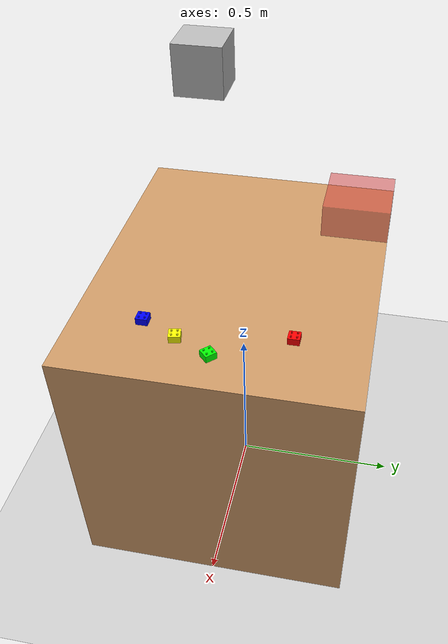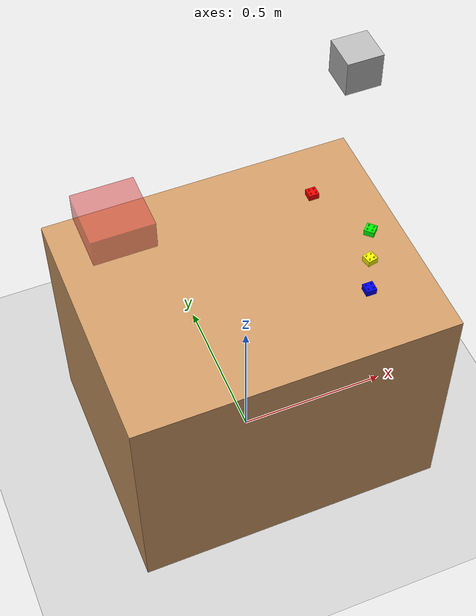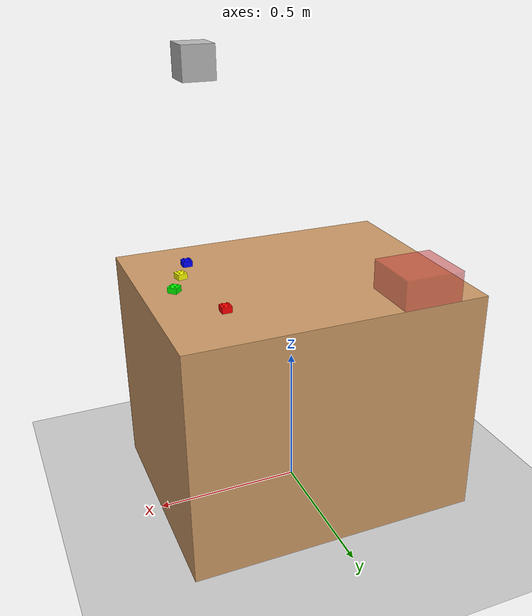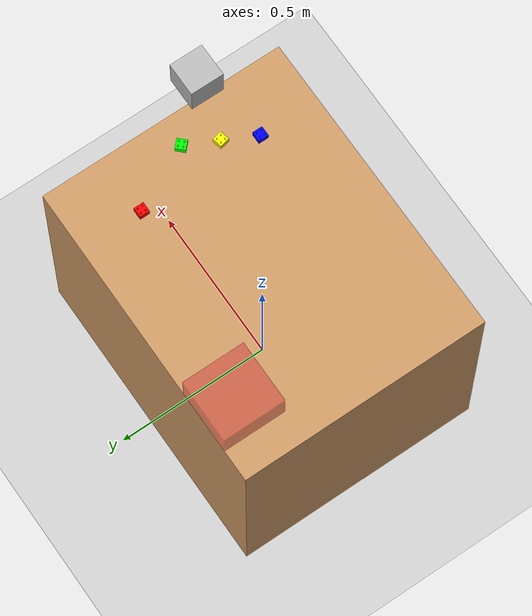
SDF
<?xml version="1.0" ?>
<sdf version="1.7">
  <world name="lego_sorting">
    <physics name="bullet_featherstone_physics" type="bullet_featherstone">
      <bullet>
        <solver>
          <type>btSequentialImpulseConstraintSolver</type>
        </solver>
        <featherstone>true</featherstone>
      </bullet>
      <max_step_size>0.001</max_step_size>
      <real_time_factor>1</real_time_factor>
      <damping>0.1</damping>
      <gravity>0.0 0.0 -9.8</gravity>
    </physics>

    <plugin filename="gz-sim-sensors-system" name="gz::sim::systems::Sensors">
      <render_engine>ogre</render_engine>
    </plugin>
    <plugin filename="gz-sim-pose-publisher-system" name="gz::sim::systems::PosePublisher">
      <publish_link_pose>true</publish_link_pose>
      <publish_nested_model_pose>true</publish_nested_model_pose>
      <use_pose_vector_msg>true</use_pose_vector_msg>
      <static_publisher>true</static_publisher>
      <static_update_frequency>1</static_update_frequency>
    </plugin>

    <!-- Lighting -->
    <light type="directional" name="sun_dir">
      <cast_shadows>true</cast_shadows>
      <pose>0 0 10 0 0 0</pose>
      <diffuse>0.8 0.8 0.8 1</diffuse>
      <specular>0.2 0.2 0.2 1</specular>
      <direction>-0.5 0.1 -0.9</direction>
    </light>

    <include>
      <uri>https://fuel.gazebosim.org/1.0/OpenRobotics/models/Ground Plane</uri>
    </include>

    <scene>
      <ambient>0.8 0.8 0.8 1.0</ambient>
      <background>0.5 0.5 0.5 1.0</background>
      <shadows>true</shadows>
    </scene>

    <!-- Main Table (Height 0.8m) -->
    <model name="table">
      <static>true</static>
      <pose>0 0 0.4 0 0 0</pose>
      <link name="link">
        <collision name="collision">
          <geometry>
            <box>
              <size>1.0 0.8 0.8</size>
            </box>
          </geometry>
        </collision>
        <visual name="visual">
          <geometry>
            <box>
              <size>1.0 0.8 0.8</size>
            </box>
          </geometry>
          <material>
            <ambient>0.8 0.6 0.4 1</ambient>
            <diffuse>0.8 0.6 0.4 1</diffuse>
            <specular>0.1 0.1 0.1 1</specular>
          </material>
        </visual>
      </link>
    </model>

    <!-- Sorting Bin (Red/translucent) -->
    <model name="bin">
        <pose>-0.3 0.3 0.85 0 0 0</pose>
        <static>true</static>
        <link name="link">
            <visual name="visual">
                <geometry><box><size>0.2 0.2 0.1</size></box></geometry>
                <material>
                    <ambient>0.3 0.3 0.3 1</ambient>
                    <diffuse>0.8 0.2 0.2 0.5</diffuse> <!-- Semi-transparent red -->
                </material>
            </visual>
            <!-- Base -->
            <collision name="base">
                <pose>0 0 -0.045 0 0 0</pose>
                <geometry><box><size>0.2 0.2 0.01</size></box></geometry>
            </collision>
            <!-- Walls -->
            <collision name="wall1">
                <pose>0.095 0 0 0 0 0</pose>
                <geometry><box><size>0.01 0.2 0.1</size></box></geometry>
            </collision>
            <collision name="wall2">
                <pose>-0.095 0 0 0 0 0</pose>
                <geometry><box><size>0.01 0.2 0.1</size></box></geometry>
            </collision>
            <collision name="wall3">
                <pose>0 0.095 0 0 0 0</pose>
                <geometry><box><size>0.2 0.01 0.1</size></box></geometry>
            </collision>
            <collision name="wall4">
                <pose>0 -0.095 0 0 0 0</pose>
                <geometry><box><size>0.2 0.01 0.1</size></box></geometry>
            </collision>
        </link>
    </model>

    <!-- Lego Bricks with Studs -->
    <model name="lego_red">
      <pose>0.3 0.2 0.82 0 0 0</pose>
      <link name="link">
        <inertial>
            <mass>0.01</mass>
            <inertia><ixx>0.00001</ixx><iyy>0.00001</iyy><izz>0.00001</izz></inertia>
        </inertial>
        <collision name="collision">
          <geometry>
            <box><size>0.032 0.032 0.02</size></box> <!-- 2x2 brick -->
          </geometry>
        </collision>
        <visual name="base_visual">
          <geometry>
            <box><size>0.032 0.032 0.02</size></box>
          </geometry>
          <material>
            <ambient>1 0 0 1</ambient>
            <diffuse>1 0 0 1</diffuse>
          </material>
        </visual>
        <!-- Studs -->
        <visual name="stud1">
          <pose>0.008 0.008 0.012 0 0 0</pose>
          <geometry><cylinder><radius>0.0024</radius><length>0.004</length></cylinder></geometry>
          <material><ambient>1 0 0 1</ambient><diffuse>1 0 0 1</diffuse></material>
        </visual>
        <visual name="stud2">
          <pose>0.008 -0.008 0.012 0 0 0</pose>
          <geometry><cylinder><radius>0.0024</radius><length>0.004</length></cylinder></geometry>
          <material><ambient>1 0 0 1</ambient><diffuse>1 0 0 1</diffuse></material>
        </visual>
        <visual name="stud3">
          <pose>-0.008 0.008 0.012 0 0 0</pose>
          <geometry><cylinder><radius>0.0024</radius><length>0.004</length></cylinder></geometry>
          <material><ambient>1 0 0 1</ambient><diffuse>1 0 0 1</diffuse></material>
        </visual>
        <visual name="stud4">
          <pose>-0.008 -0.008 0.012 0 0 0</pose>
          <geometry><cylinder><radius>0.0024</radius><length>0.004</length></cylinder></geometry>
          <material><ambient>1 0 0 1</ambient><diffuse>1 0 0 1</diffuse></material>
        </visual>
      </link>
    </model>

    <model name="lego_blue">
      <pose>0.3 -0.2 0.82 0 0 0</pose>
      <link name="link">
        <inertial>
            <mass>0.01</mass>
            <inertia><ixx>0.00001</ixx><iyy>0.00001</iyy><izz>0.00001</izz></inertia>
        </inertial>
        <collision name="collision">
          <geometry>
            <box><size>0.032 0.032 0.02</size></box>
          </geometry>
        </collision>
        <visual name="base_visual">
          <geometry>
            <box><size>0.032 0.032 0.02</size></box>
          </geometry>
          <material>
            <ambient>0 0 1 1</ambient>
            <diffuse>0 0 1 1</diffuse>
          </material>
        </visual>
        <!-- Studs -->
        <visual name="stud1"><pose>0.008 0.008 0.012 0 0 0</pose><geometry><cylinder><radius>0.0024</radius><length>0.004</length></cylinder></geometry><material><ambient>0 0 1 1</ambient><diffuse>0 0 1 1</diffuse></material></visual>
        <visual name="stud2"><pose>0.008 -0.008 0.012 0 0 0</pose><geometry><cylinder><radius>0.0024</radius><length>0.004</length></cylinder></geometry><material><ambient>0 0 1 1</ambient><diffuse>0 0 1 1</diffuse></material></visual>
        <visual name="stud3"><pose>-0.008 0.008 0.012 0 0 0</pose><geometry><cylinder><radius>0.0024</radius><length>0.004</length></cylinder></geometry><material><ambient>0 0 1 1</ambient><diffuse>0 0 1 1</diffuse></material></visual>
        <visual name="stud4"><pose>-0.008 -0.008 0.012 0 0 0</pose><geometry><cylinder><radius>0.0024</radius><length>0.004</length></cylinder></geometry><material><ambient>0 0 1 1</ambient><diffuse>0 0 1 1</diffuse></material></visual>
      </link>
    </model>

    <model name="lego_green">
      <pose>0.4 0.0 0.82 0 0 0.785</pose>
      <link name="link">
        <inertial>
            <mass>0.01</mass>
            <inertia><ixx>0.00001</ixx><iyy>0.00001</iyy><izz>0.00001</izz></inertia>
        </inertial>
        <collision name="collision">
          <geometry>
            <box><size>0.032 0.032 0.02</size></box>
          </geometry>
        </collision>
        <visual name="base_visual">
          <geometry>
            <box><size>0.032 0.032 0.02</size></box>
          </geometry>
          <material>
            <ambient>0 1 0 1</ambient>
            <diffuse>0 1 0 1</diffuse>
          </material>
        </visual>
        <!-- Studs -->
        <visual name="stud1"><pose>0.008 0.008 0.012 0 0 0</pose><geometry><cylinder><radius>0.0024</radius><length>0.004</length></cylinder></geometry><material><ambient>0 1 0 1</ambient><diffuse>0 1 0 1</diffuse></material></visual>
        <visual name="stud2"><pose>0.008 -0.008 0.012 0 0 0</pose><geometry><cylinder><radius>0.0024</radius><length>0.004</length></cylinder></geometry><material><ambient>0 1 0 1</ambient><diffuse>0 1 0 1</diffuse></material></visual>
        <visual name="stud3"><pose>-0.008 0.008 0.012 0 0 0</pose><geometry><cylinder><radius>0.0024</radius><length>0.004</length></cylinder></geometry><material><ambient>0 1 0 1</ambient><diffuse>0 1 0 1</diffuse></material></visual>
        <visual name="stud4"><pose>-0.008 -0.008 0.012 0 0 0</pose><geometry><cylinder><radius>0.0024</radius><length>0.004</length></cylinder></geometry><material><ambient>0 1 0 1</ambient><diffuse>0 1 0 1</diffuse></material></visual>
      </link>
    </model>

    <model name="lego_yellow">
      <pose>0.35 -0.1 0.82 0 0 0.2</pose>
      <link name="link">
        <inertial>
            <mass>0.01</mass>
            <inertia><ixx>0.00001</ixx><iyy>0.00001</iyy><izz>0.00001</izz></inertia>
        </inertial>
        <collision name="collision">
          <geometry>
            <box><size>0.032 0.032 0.02</size></box>
          </geometry>
        </collision>
        <visual name="base_visual">
          <geometry>
            <box><size>0.032 0.032 0.02</size></box>
          </geometry>
          <material>
            <ambient>1 1 0 1</ambient>
            <diffuse>1 1 0 1</diffuse>
          </material>
        </visual>
        <!-- Studs -->
        <visual name="stud1"><pose>0.008 0.008 0.012 0 0 0</pose><geometry><cylinder><radius>0.0024</radius><length>0.004</length></cylinder></geometry><material><ambient>1 1 0 1</ambient><diffuse>1 1 0 1</diffuse></material></visual>
        <visual name="stud2"><pose>0.008 -0.008 0.012 0 0 0</pose><geometry><cylinder><radius>0.0024</radius><length>0.004</length></cylinder></geometry><material><ambient>1 1 0 1</ambient><diffuse>1 1 0 1</diffuse></material></visual>
        <visual name="stud3"><pose>-0.008 0.008 0.012 0 0 0</pose><geometry><cylinder><radius>0.0024</radius><length>0.004</length></cylinder></geometry><material><ambient>1 1 0 1</ambient><diffuse>1 1 0 1</diffuse></material></visual>
        <visual name="stud4"><pose>-0.008 -0.008 0.012 0 0 0</pose><geometry><cylinder><radius>0.0024</radius><length>0.004</length></cylinder></geometry><material><ambient>1 1 0 1</ambient><diffuse>1 1 0 1</diffuse></material></visual>
      </link>
    </model>

    <!-- GUI Camera (User View) -->
    <gui fullscreen='0'>
      <camera name='user_camera'>
        <pose>1.6 -1.2 1.8 0 0.5 2.5</pose>
        <view_controller>orbit</view_controller>
        <projection_type>perspective</projection_type>
      </camera>
    </gui>

    <!-- Overhead Camera (Adjusted Pose) -->
    <model name="camera">
      <pose>0.3 0.0 1.5 0 1.5708 0</pose>
      <link name="link">
        <inertial>
          <mass>0.1</mass>
          <inertia>
            <ixx>0.000166667</ixx>
            <iyy>0.000166667</iyy>
            <izz>0.000166667</izz>
          </inertia>
        </inertial>
        <collision name="collision">
          <geometry>
            <box>
              <size>0.1 0.1 0.1</size>
            </box>
          </geometry>
        </collision>
        <visual name="visual">
          <geometry>
            <box>
              <size>0.1 0.1 0.1</size>
            </box>
          </geometry>
        </visual>
        <sensor name="camera" type="camera">
          <camera>
            <horizontal_fov>1.047</horizontal_fov>
            <image>
              <width>640</width>
              <height>480</height>
            </image>
            <clip>
              <near>0.1</near>
              <far>100</far>
            </clip>
          </camera>
          <always_on>1</always_on>
          <update_rate>30</update_rate>
          <visualize>true</visualize>
          <topic>camera/image_raw</topic>
        </sensor>

        <!-- Depth Camera Sensor -->
        <sensor name="depth_camera" type="depth_camera">
          <update_rate>30</update_rate>
          <topic>camera/depth_image</topic>
          <camera>
            <horizontal_fov>1.047</horizontal_fov>
            <image>
              <width>640</width>
              <height>480</height>
              <format>R_FLOAT32</format>
            </image>
            <clip>
              <near>0.1</near>
              <far>100</far>
            </clip>
          </camera>
          <always_on>1</always_on>
          <visualize>true</visualize>
        </sensor>
      </link>
      <static>true</static>
    </model>

  </world>
</sdf>
